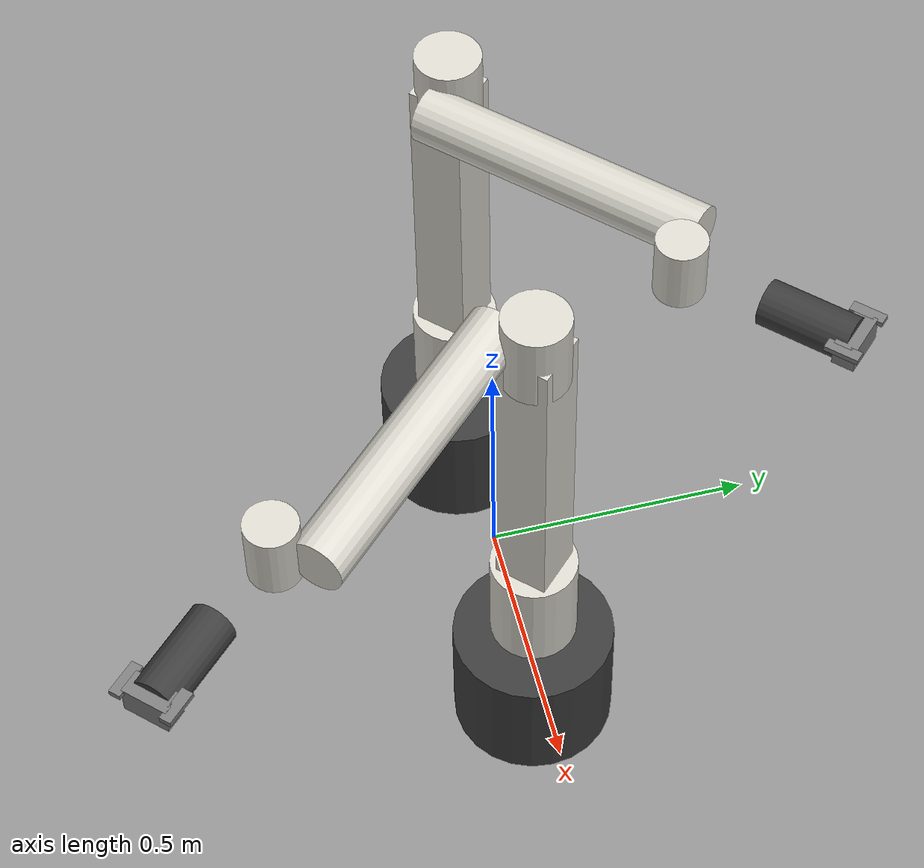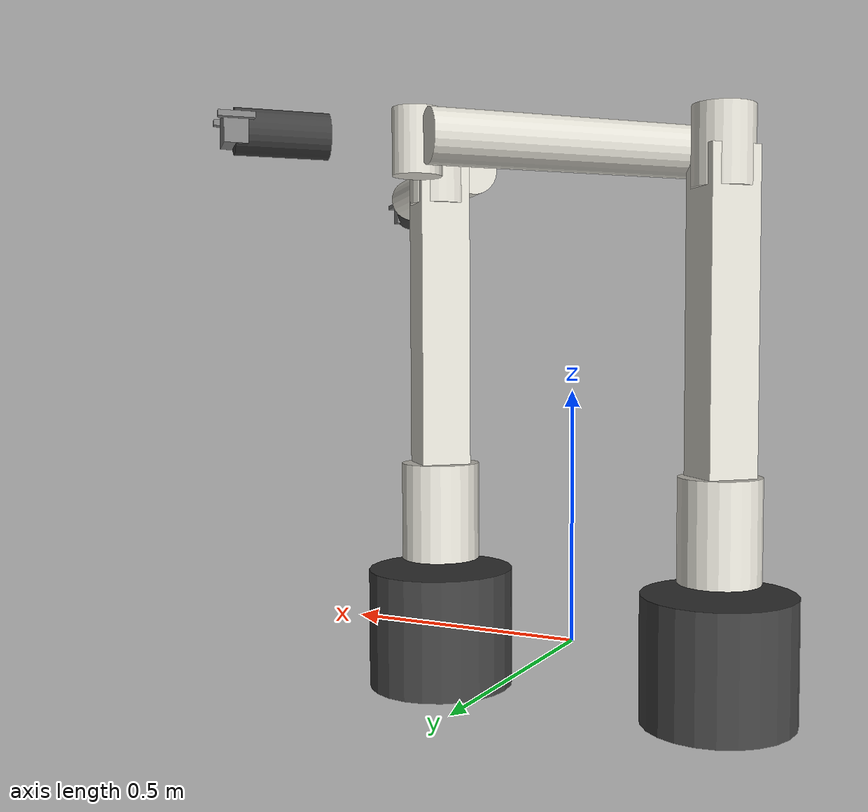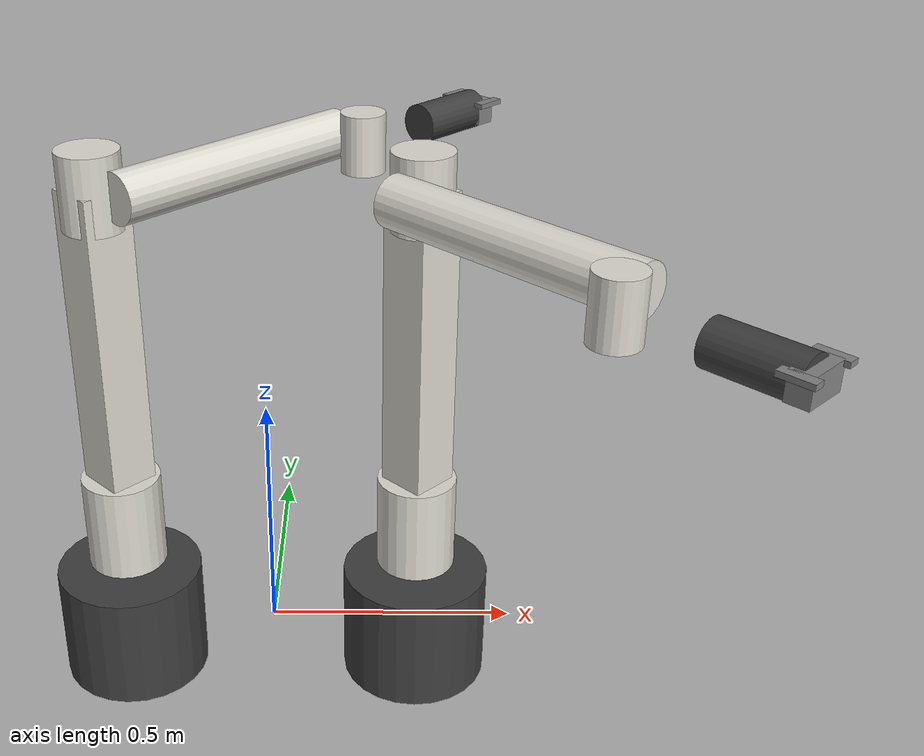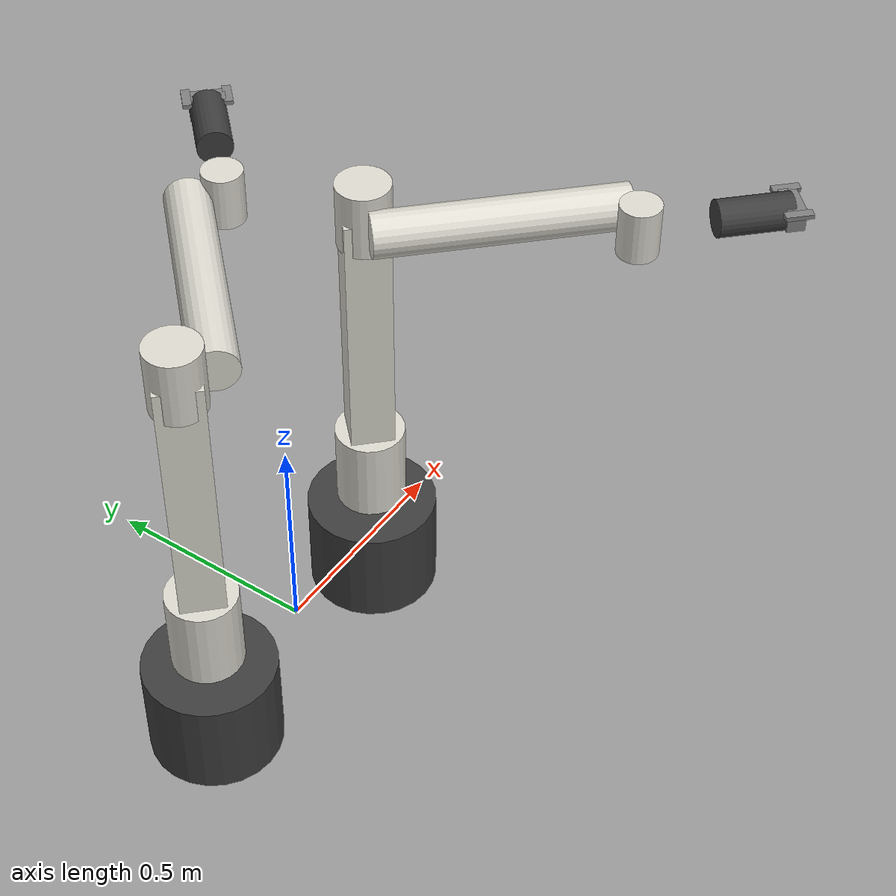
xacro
<?xml version="1.0"?>
<!-- Dual-Arm Fanuc CRX-10iA Setup with Robotiq Hand-E Grippers -->
<robot name="fanuc_dual_arm" xmlns:xacro="http://www.ros.org/wiki/xacro">

  <!-- Include gripper macro -->
  <xacro:include filename="$(find fanuc_dual_arm_description)/urdf/robotiq_hande.urdf.xacro"/>

  <!-- World link -->
  <link name="world"/>

  <!-- ========== LEFT ARM (mounted at +45 degrees) ========== -->

  <!-- Left arm base -->
  <link name="left_base_link">
    <visual>
      <origin xyz="0 0 0" rpy="0 0 0"/>
      <geometry>
        <cylinder radius="0.15" length="0.245"/>
      </geometry>
      <material name="dark_gray">
        <color rgba="0.24 0.24 0.24 1.0"/>
      </material>
    </visual>
    <collision>
      <origin xyz="0 0 0" rpy="0 0 0"/>
      <geometry>
        <cylinder radius="0.15" length="0.245"/>
      </geometry>
    </collision>
    <inertial>
      <mass value="10.0"/>
      <inertia ixx="0.1" ixy="0.0" ixz="0.0" iyy="0.1" iyz="0.0" izz="0.1"/>
    </inertial>
  </link>

  <!-- Mount left arm at +45 degrees -->
  <joint name="world_to_left_base" type="fixed">
    <origin xyz="-0.3 0 0" rpy="0 0 0.7854"/> <!-- 45 degrees = 0.7854 rad -->
    <parent link="world"/>
    <child link="left_base_link"/>
  </joint>

  <!-- Left arm links (simplified for demonstration) -->
  <xacro:property name="left_" value="left_"/>

  <link name="left_link_1">
    <visual>
      <geometry>
        <cylinder radius="0.08" length="0.2"/>
      </geometry>
      <material name="light_gray">
        <color rgba="0.86 0.85 0.81 1.0"/>
      </material>
    </visual>
    <collision>
      <geometry>
        <cylinder radius="0.08" length="0.2"/>
      </geometry>
    </collision>
    <inertial>
      <mass value="5.0"/>
      <inertia ixx="0.05" ixy="0.0" ixz="0.0" iyy="0.05" iyz="0.0" izz="0.05"/>
    </inertial>
  </link>

  <joint name="left_joint_1" type="revolute">
    <origin xyz="0 0 0.245" rpy="0 0 0"/>
    <parent link="left_base_link"/>
    <child link="left_link_1"/>
    <axis xyz="0 0 1"/>
    <limit lower="-3.14159" upper="3.14159" effort="100" velocity="2.0944"/>
  </joint>

  <link name="left_link_2">
    <visual>
      <origin xyz="0 0 0.355" rpy="0 0 0"/>
      <geometry>
        <box size="0.1 0.1 0.71"/>
      </geometry>
      <material name="light_gray"/>
    </visual>
    <collision>
      <origin xyz="0 0 0.355" rpy="0 0 0"/>
      <geometry>
        <box size="0.1 0.1 0.71"/>
      </geometry>
    </collision>
    <inertial>
      <mass value="8.0"/>
      <inertia ixx="0.1" ixy="0.0" ixz="0.0" iyy="0.1" iyz="0.0" izz="0.1"/>
    </inertial>
  </link>

  <joint name="left_joint_2" type="revolute">
    <origin xyz="0 0 0" rpy="0 0 0"/>
    <parent link="left_link_1"/>
    <child link="left_link_2"/>
    <axis xyz="0 1 0"/>
    <limit lower="-3.14159" upper="3.14159" effort="100" velocity="2.0944"/>
  </joint>

  <link name="left_link_3">
    <visual>
      <geometry>
        <cylinder radius="0.06" length="0.15"/>
      </geometry>
      <material name="light_gray"/>
    </visual>
    <collision>
      <geometry>
        <cylinder radius="0.06" length="0.15"/>
      </geometry>
    </collision>
    <inertial>
      <mass value="3.0"/>
      <inertia ixx="0.03" ixy="0.0" ixz="0.0" iyy="0.03" iyz="0.0" izz="0.03"/>
    </inertial>
  </link>

  <joint name="left_joint_3" type="revolute">
    <origin xyz="0 0 0.71" rpy="0 0 0"/>
    <parent link="left_link_2"/>
    <child link="left_link_3"/>
    <axis xyz="0 -1 0"/>
    <limit lower="-4.7124" upper="4.7124" effort="100" velocity="3.1416"/>
  </joint>

  <link name="left_link_4">
    <visual>
      <origin xyz="0.27 -0.075 0" rpy="0 1.5708 0"/>
      <geometry>
        <cylinder radius="0.05" length="0.54"/>
      </geometry>
      <material name="light_gray"/>
    </visual>
    <collision>
      <origin xyz="0.27 -0.075 0" rpy="0 1.5708 0"/>
      <geometry>
        <cylinder radius="0.05" length="0.54"/>
      </geometry>
    </collision>
    <inertial>
      <mass value="2.5"/>
      <inertia ixx="0.02" ixy="0.0" ixz="0.0" iyy="0.02" iyz="0.0" izz="0.02"/>
    </inertial>
  </link>

  <joint name="left_joint_4" type="revolute">
    <origin xyz="0 0 0" rpy="0 0 0"/>
    <parent link="left_link_3"/>
    <child link="left_link_4"/>
    <axis xyz="-1 0 0"/>
    <limit lower="-3.3161" upper="3.3161" effort="100" velocity="3.1416"/>
  </joint>

  <link name="left_link_5">
    <visual>
      <geometry>
        <cylinder radius="0.045" length="0.12"/>
      </geometry>
      <material name="light_gray"/>
    </visual>
    <collision>
      <geometry>
        <cylinder radius="0.045" length="0.12"/>
      </geometry>
    </collision>
    <inertial>
      <mass value="1.5"/>
      <inertia ixx="0.01" ixy="0.0" ixz="0.0" iyy="0.01" iyz="0.0" izz="0.01"/>
    </inertial>
  </link>

  <joint name="left_joint_5" type="revolute">
    <origin xyz="0.54 -0.15 0" rpy="0 0 0"/>
    <parent link="left_link_4"/>
    <child link="left_link_5"/>
    <axis xyz="0 -1 0"/>
    <limit lower="-3.14159" upper="3.14159" effort="100" velocity="3.1416"/>
  </joint>

  <link name="left_link_6">
    <visual>
      <origin xyz="0.08 0 0" rpy="0 1.5708 0"/>
      <geometry>
        <cylinder radius="0.04" length="0.16"/>
      </geometry>
      <material name="dark_gray"/>
    </visual>
    <collision>
      <origin xyz="0.08 0 0" rpy="0 1.5708 0"/>
      <geometry>
        <cylinder radius="0.04" length="0.16"/>
      </geometry>
    </collision>
    <inertial>
      <mass value="0.8"/>
      <inertia ixx="0.005" ixy="0.0" ixz="0.0" iyy="0.005" iyz="0.0" izz="0.005"/>
    </inertial>
  </link>

  <joint name="left_joint_6" type="revolute">
    <origin xyz="0.16 0 0" rpy="0 0 0"/>
    <parent link="left_link_5"/>
    <child link="left_link_6"/>
    <axis xyz="-1 0 0"/>
    <limit lower="-3.3161" upper="3.3161" effort="100" velocity="3.1416"/>
  </joint>

  <!-- Left arm flange and tool0 -->
  <link name="left_flange"/>
  <joint name="left_joint_6_flange" type="fixed">
    <origin xyz="0.16 0 0" rpy="0 0 0"/>
    <parent link="left_link_6"/>
    <child link="left_flange"/>
  </joint>

  <link name="left_tool0"/>
  <joint name="left_flange_tool0" type="fixed">
    <origin xyz="0 0 0" rpy="3.14159 -1.5708 0"/>
    <parent link="left_flange"/>
    <child link="left_tool0"/>
  </joint>

  <!-- Attach left gripper -->
  <xacro:robotiq_hande_gripper prefix="left_" parent="left_tool0">
    <origin xyz="0 0 0" rpy="0 0 0"/>
  </xacro:robotiq_hande_gripper>

  <!-- ========== RIGHT ARM (mounted at -45 degrees) ========== -->

  <!-- Right arm base -->
  <link name="right_base_link">
    <visual>
      <origin xyz="0 0 0" rpy="0 0 0"/>
      <geometry>
        <cylinder radius="0.15" length="0.245"/>
      </geometry>
      <material name="dark_gray"/>
    </visual>
    <collision>
      <origin xyz="0 0 0" rpy="0 0 0"/>
      <geometry>
        <cylinder radius="0.15" length="0.245"/>
      </geometry>
    </collision>
    <inertial>
      <mass value="10.0"/>
      <inertia ixx="0.1" ixy="0.0" ixz="0.0" iyy="0.1" iyz="0.0" izz="0.1"/>
    </inertial>
  </link>

  <!-- Mount right arm at -45 degrees -->
  <joint name="world_to_right_base" type="fixed">
    <origin xyz="0.3 0 0" rpy="0 0 -0.7854"/> <!-- -45 degrees = -0.7854 rad -->
    <parent link="world"/>
    <child link="right_base_link"/>
  </joint>

  <!-- Right arm links (mirror of left arm) -->
  <link name="right_link_1">
    <visual>
      <geometry>
        <cylinder radius="0.08" length="0.2"/>
      </geometry>
      <material name="light_gray"/>
    </visual>
    <collision>
      <geometry>
        <cylinder radius="0.08" length="0.2"/>
      </geometry>
    </collision>
    <inertial>
      <mass value="5.0"/>
      <inertia ixx="0.05" ixy="0.0" ixz="0.0" iyy="0.05" iyz="0.0" izz="0.05"/>
    </inertial>
  </link>

  <joint name="right_joint_1" type="revolute">
    <origin xyz="0 0 0.245" rpy="0 0 0"/>
    <parent link="right_base_link"/>
    <child link="right_link_1"/>
    <axis xyz="0 0 1"/>
    <limit lower="-3.14159" upper="3.14159" effort="100" velocity="2.0944"/>
  </joint>

  <link name="right_link_2">
    <visual>
      <origin xyz="0 0 0.355" rpy="0 0 0"/>
      <geometry>
        <box size="0.1 0.1 0.71"/>
      </geometry>
      <material name="light_gray"/>
    </visual>
    <collision>
      <origin xyz="0 0 0.355" rpy="0 0 0"/>
      <geometry>
        <box size="0.1 0.1 0.71"/>
      </geometry>
    </collision>
    <inertial>
      <mass value="8.0"/>
      <inertia ixx="0.1" ixy="0.0" ixz="0.0" iyy="0.1" iyz="0.0" izz="0.1"/>
    </inertial>
  </link>

  <joint name="right_joint_2" type="revolute">
    <origin xyz="0 0 0" rpy="0 0 0"/>
    <parent link="right_link_1"/>
    <child link="right_link_2"/>
    <axis xyz="0 1 0"/>
    <limit lower="-3.14159" upper="3.14159" effort="100" velocity="2.0944"/>
  </joint>

  <link name="right_link_3">
    <visual>
      <geometry>
        <cylinder radius="0.06" length="0.15"/>
      </geometry>
      <material name="light_gray"/>
    </visual>
    <collision>
      <geometry>
        <cylinder radius="0.06" length="0.15"/>
      </geometry>
    </collision>
    <inertial>
      <mass value="3.0"/>
      <inertia ixx="0.03" ixy="0.0" ixz="0.0" iyy="0.03" iyz="0.0" izz="0.03"/>
    </inertial>
  </link>

  <joint name="right_joint_3" type="revolute">
    <origin xyz="0 0 0.71" rpy="0 0 0"/>
    <parent link="right_link_2"/>
    <child link="right_link_3"/>
    <axis xyz="0 -1 0"/>
    <limit lower="-4.7124" upper="4.7124" effort="100" velocity="3.1416"/>
  </joint>

  <link name="right_link_4">
    <visual>
      <origin xyz="0.27 -0.075 0" rpy="0 1.5708 0"/>
      <geometry>
        <cylinder radius="0.05" length="0.54"/>
      </geometry>
      <material name="light_gray"/>
    </visual>
    <collision>
      <origin xyz="0.27 -0.075 0" rpy="0 1.5708 0"/>
      <geometry>
        <cylinder radius="0.05" length="0.54"/>
      </geometry>
    </collision>
    <inertial>
      <mass value="2.5"/>
      <inertia ixx="0.02" ixy="0.0" ixz="0.0" iyy="0.02" iyz="0.0" izz="0.02"/>
    </inertial>
  </link>

  <joint name="right_joint_4" type="revolute">
    <origin xyz="0 0 0" rpy="0 0 0"/>
    <parent link="right_link_3"/>
    <child link="right_link_4"/>
    <axis xyz="-1 0 0"/>
    <limit lower="-3.3161" upper="3.3161" effort="100" velocity="3.1416"/>
  </joint>

  <link name="right_link_5">
    <visual>
      <geometry>
        <cylinder radius="0.045" length="0.12"/>
      </geometry>
      <material name="light_gray"/>
    </visual>
    <collision>
      <geometry>
        <cylinder radius="0.045" length="0.12"/>
      </geometry>
    </collision>
    <inertial>
      <mass value="1.5"/>
      <inertia ixx="0.01" ixy="0.0" ixz="0.0" iyy="0.01" iyz="0.0" izz="0.01"/>
    </inertial>
  </link>

  <joint name="right_joint_5" type="revolute">
    <origin xyz="0.54 -0.15 0" rpy="0 0 0"/>
    <parent link="right_link_4"/>
    <child link="right_link_5"/>
    <axis xyz="0 -1 0"/>
    <limit lower="-3.14159" upper="3.14159" effort="100" velocity="3.1416"/>
  </joint>

  <link name="right_link_6">
    <visual>
      <origin xyz="0.08 0 0" rpy="0 1.5708 0"/>
      <geometry>
        <cylinder radius="0.04" length="0.16"/>
      </geometry>
      <material name="dark_gray"/>
    </visual>
    <collision>
      <origin xyz="0.08 0 0" rpy="0 1.5708 0"/>
      <geometry>
        <cylinder radius="0.04" length="0.16"/>
      </geometry>
    </collision>
    <inertial>
      <mass value="0.8"/>
      <inertia ixx="0.005" ixy="0.0" ixz="0.0" iyy="0.005" iyz="0.0" izz="0.005"/>
    </inertial>
  </link>

  <joint name="right_joint_6" type="revolute">
    <origin xyz="0.16 0 0" rpy="0 0 0"/>
    <parent link="right_link_5"/>
    <child link="right_link_6"/>
    <axis xyz="-1 0 0"/>
    <limit lower="-3.3161" upper="3.3161" effort="100" velocity="3.1416"/>
  </joint>

  <!-- Right arm flange and tool0 -->
  <link name="right_flange"/>
  <joint name="right_joint_6_flange" type="fixed">
    <origin xyz="0.16 0 0" rpy="0 0 0"/>
    <parent link="right_link_6"/>
    <child link="right_flange"/>
  </joint>

  <link name="right_tool0"/>
  <joint name="right_flange_tool0" type="fixed">
    <origin xyz="0 0 0" rpy="3.14159 -1.5708 0"/>
    <parent link="right_flange"/>
    <child link="right_tool0"/>
  </joint>

  <!-- Attach right gripper -->
  <xacro:robotiq_hande_gripper prefix="right_" parent="right_tool0">
    <origin xyz="0 0 0" rpy="0 0 0"/>
  </xacro:robotiq_hande_gripper>

</robot>

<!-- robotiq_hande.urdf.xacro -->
<!-- Simplified Robotiq Hand-E Gripper URDF -->
<robot name="robotiq_hande" xmlns:xacro="http://www.ros.org/wiki/xacro">

  <xacro:macro name="robotiq_hande_gripper" params="prefix parent *origin">

    <!-- Gripper base link -->
    <link name="${prefix}gripper_base_link">
      <visual>
        <geometry>
          <box size="0.05 0.08 0.04"/>
        </geometry>
        <material name="gripper_gray">
          <color rgba="0.5 0.5 0.5 1.0"/>
        </material>
      </visual>
      <collision>
        <geometry>
          <box size="0.05 0.08 0.04"/>
        </geometry>
      </collision>
      <inertial>
        <mass value="0.65"/>
        <inertia ixx="0.001" ixy="0.0" ixz="0.0" iyy="0.001" iyz="0.0" izz="0.001"/>
      </inertial>
    </link>

    <!-- Joint connecting gripper to robot -->
    <joint name="${prefix}gripper_joint" type="fixed">
      <xacro:insert_block name="origin"/>
      <parent link="${parent}"/>
      <child link="${prefix}gripper_base_link"/>
    </joint>

    <!-- Left finger -->
    <link name="${prefix}left_finger">
      <visual>
        <origin xyz="0.02 0.02 0" rpy="0 0 0"/>
        <geometry>
          <box size="0.01 0.02 0.06"/>
        </geometry>
        <material name="gripper_gray"/>
      </visual>
      <collision>
        <origin xyz="0.02 0.02 0" rpy="0 0 0"/>
        <geometry>
          <box size="0.01 0.02 0.06"/>
        </geometry>
      </collision>
      <inertial>
        <mass value="0.05"/>
        <inertia ixx="0.0001" ixy="0.0" ixz="0.0" iyy="0.0001" iyz="0.0" izz="0.0001"/>
      </inertial>
    </link>

    <joint name="${prefix}left_finger_joint" type="prismatic">
      <origin xyz="0 0.025 0" rpy="0 0 0"/>
      <parent link="${prefix}gripper_base_link"/>
      <child link="${prefix}left_finger"/>
      <axis xyz="0 1 0"/>
      <limit lower="0.0" upper="0.025" effort="100" velocity="0.1"/>
    </joint>

    <!-- Right finger -->
    <link name="${prefix}right_finger">
      <visual>
        <origin xyz="0.02 -0.02 0" rpy="0 0 0"/>
        <geometry>
          <box size="0.01 0.02 0.06"/>
        </geometry>
        <material name="gripper_gray"/>
      </visual>
      <collision>
        <origin xyz="0.02 -0.02 0" rpy="0 0 0"/>
        <geometry>
          <box size="0.01 0.02 0.06"/>
        </geometry>
      </collision>
      <inertial>
        <mass value="0.05"/>
        <inertia ixx="0.0001" ixy="0.0" ixz="0.0" iyy="0.0001" iyz="0.0" izz="0.0001"/>
      </inertial>
    </link>

    <joint name="${prefix}right_finger_joint" type="prismatic">
      <origin xyz="0 -0.025 0" rpy="0 0 0"/>
      <parent link="${prefix}gripper_base_link"/>
      <child link="${prefix}right_finger"/>
      <axis xyz="0 -1 0"/>
      <limit lower="0.0" upper="0.025" effort="100" velocity="0.1"/>
      <mimic joint="${prefix}left_finger_joint" multiplier="1"/>
    </joint>

    <!-- Tool center point -->
    <link name="${prefix}tcp"/>
    <joint name="${prefix}tcp_joint" type="fixed">
      <origin xyz="0.06 0 0" rpy="0 0 0"/>
      <parent link="${prefix}gripper_base_link"/>
      <child link="${prefix}tcp"/>
    </joint>

  </xacro:macro>

</robot>
